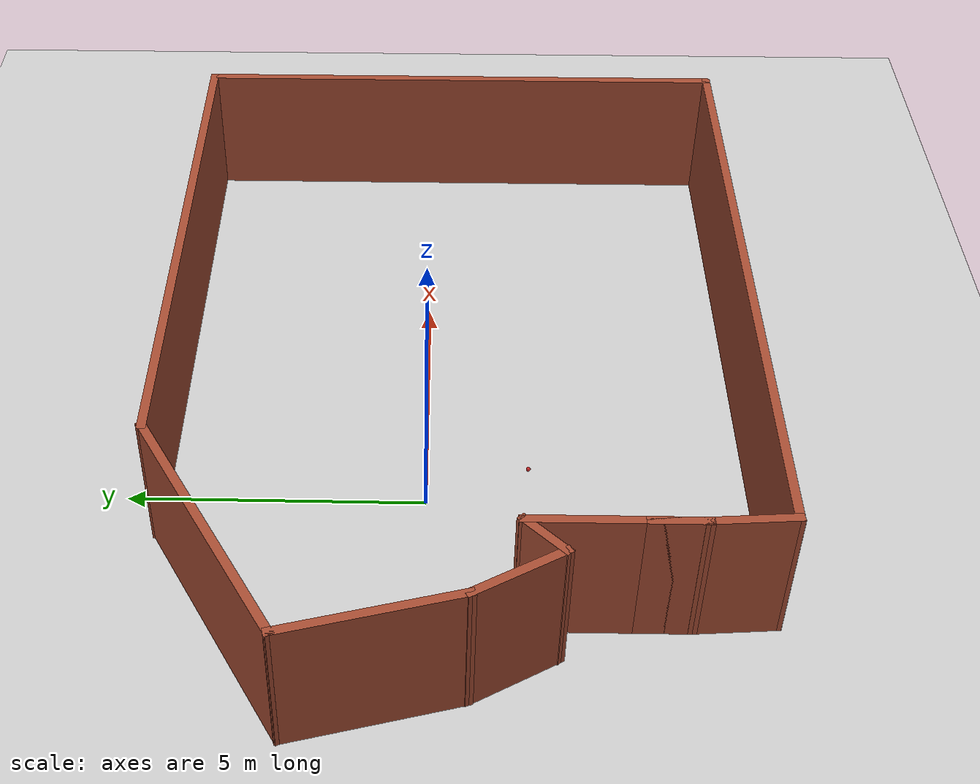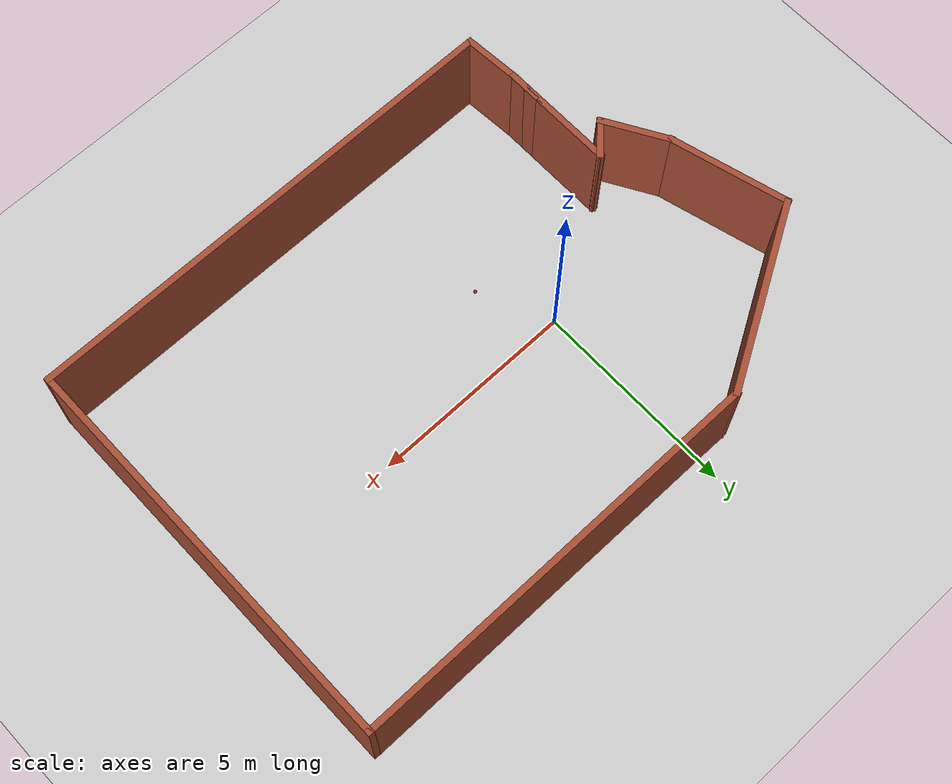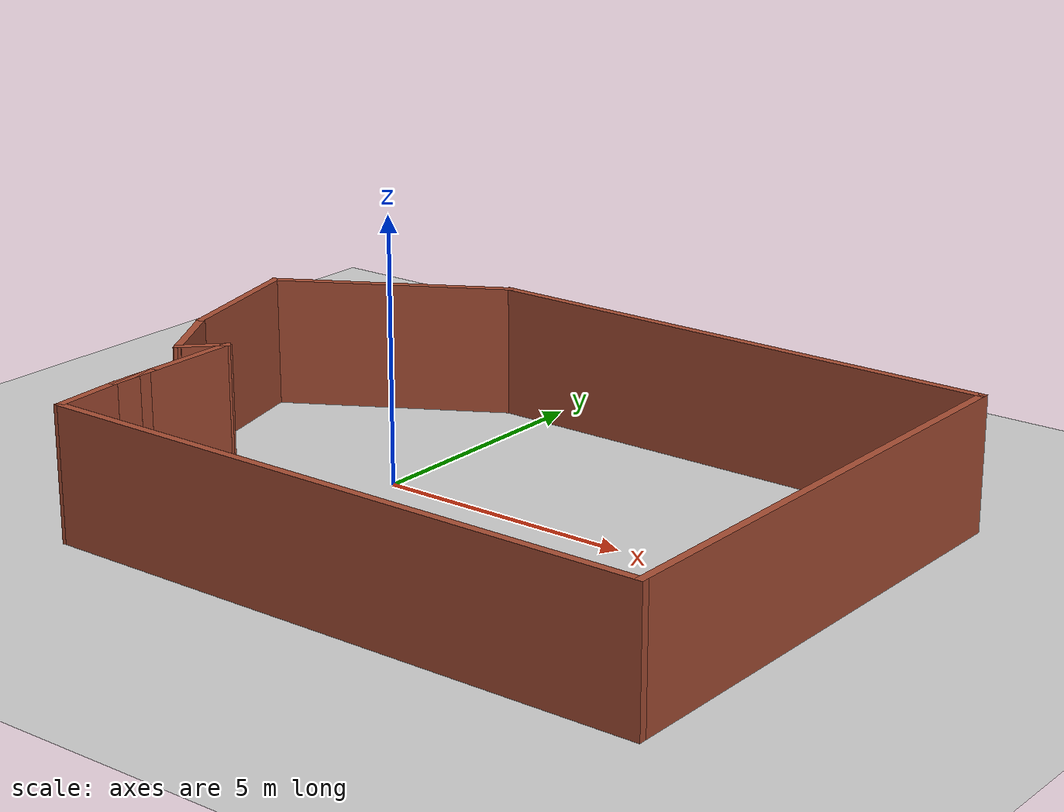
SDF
<sdf version="1.7">
 <world name="default">
  <light name="sun" type="directional">
   <pose>0 0 10 0 -0 0</pose>
   <diffuse>0.8 0.8 0.8 1</diffuse>
   <specular>0.2 0.2 0.2 1</specular>
   <attenuation>
    <range>1000</range>
    <constant>0.9</constant>
    <linear>0.01</linear>
    <quadratic>0.001</quadratic>
   </attenuation>
   <direction>-0.5 0.1 -0.9</direction>
   <spot><inner_angle>0</inner_angle><outer_angle>0</outer_angle><falloff>0</falloff></spot>
  </light>
  <model name="ground_plane">
   <static>1</static>
   <link name="link">
    <collision name="collision">
     <geometry><plane><normal>0 0 1</normal><size>100 100</size></plane></geometry>
     <surface>
      <contact><collide_bitmask>65535</collide_bitmask></contact>
      <friction><ode><mu>100</mu><mu2>50</mu2></ode></friction>
     </surface>
    </collision>
    <visual name="visual">
     <cast_shadows>0</cast_shadows>
     <geometry><plane><normal>0 0 1</normal><size>100 100</size></plane></geometry>
     <material>
      <script><uri>file://media/materials/scripts/gazebo.material</uri><name>Gazebo/Grey</name></script>
     </material>
    </visual>
   </link>
  </model>
  <gravity>0 0 -9.8</gravity>
  <magnetic_field>6e-06 2.3e-05 -4.2e-05</magnetic_field>
  <atmosphere type="adiabatic"/>
  <physics type="ode">
   <max_step_size>0.001</max_step_size>
   <real_time_factor>1</real_time_factor>
   <real_time_update_rate>1000</real_time_update_rate>
  </physics>
  <scene><ambient>0.4 0.4 0.4 1</ambient><background>0.7 0.7 0.7 1</background><shadows>1</shadows></scene>
  <audio><device>default</device></audio>
  <spherical_coordinates>
   <surface_model>EARTH_WGS84</surface_model>
   <latitude_deg>0</latitude_deg>
   <longitude_deg>0</longitude_deg>
   <elevation>0</elevation>
   <heading_deg>0</heading_deg>
  </spherical_coordinates>
  <model name="cricket_ball">
   <link name="link">
    <pose>0 0 0.0375 0 -0 0</pose>
    <inertial>
     <mass>0.1467</mass>
     <inertia>
      <ixx>8.25187e-05</ixx>
      <ixy>0</ixy>
      <ixz>0</ixz>
      <iyy>8.25187e-05</iyy>
      <iyz>0</iyz>
      <izz>8.25187e-05</izz>
     </inertia>
    </inertial>
    <collision name="collision">
     <geometry><sphere><radius>0.0375</radius></sphere></geometry>
     <surface>
      <contact>
       <poissons_ratio>0.347</poissons_ratio>
       <elastic_modulus>8.8e+09</elastic_modulus>
       <ode><kp>100000</kp><kd>100</kd><max_vel>100</max_vel><min_depth>0.001</min_depth></ode>
      </contact>
      <friction>
       <torsional>
        <coefficient>1</coefficient>
        <use_patch_radius>0</use_patch_radius>
        <surface_radius>0.01</surface_radius>
       </torsional>
      </friction>
     </surface>
    </collision>
    <visual name="visual">
     <geometry><sphere><radius>0.0375</radius></sphere></geometry>
     <material>
      <script><uri>file://media/materials/scripts/gazebo.material</uri><name>Gazebo/Red</name></script>
     </material>
    </visual>
    <velocity_decay><linear>0</linear><angular>0.005</angular></velocity_decay>
   </link>
   <pose>0.786291 -1.74003 -0.001014 0 -0 0</pose>
  </model>
  <model name="my_world">
   <pose>2.25946 -0.526396 0 0 -0 0</pose>
   <link name="Wall_0">
    <collision name="Wall_0_Collision">
     <geometry><box><size>1 0.15 2.5</size></box></geometry>
     <pose>0 0 1.25 0 -0 0</pose>
    </collision>
    <visual name="Wall_0_Visual">
     <pose>0 0 1.25 0 -0 0</pose>
     <geometry><box><size>1 0.15 2.5</size></box></geometry>
     <material>
      <script><uri>file://media/materials/scripts/gazebo.material</uri><name>Gazebo/Bricks</name></script>
      <ambient>1 1 1 1</ambient>
     </material>
     <meta><layer>0</layer></meta>
    </visual>
    <pose>-4.88946 -3.1986 0 0 -0 -1.5708</pose>
   </link>
   <link name="Wall_1">
    <collision name="Wall_1_Collision">
     <geometry><box><size>1 0.15 2.5</size></box></geometry>
     <pose>0 0 1.25 0 -0 0</pose>
    </collision>
    <visual name="Wall_1_Visual">
     <pose>0 0 1.25 0 -0 0</pose>
     <geometry><box><size>1 0.15 2.5</size></box></geometry>
     <material>
      <script><uri>file://media/materials/scripts/gazebo.material</uri><name>Gazebo/Bricks</name></script>
      <ambient>1 1 1 1</ambient>
     </material>
     <meta><layer>0</layer></meta>
    </visual>
    <pose>-4.88946 -3.1986 0 0 -0 1.5708</pose>
   </link>
   <link name="Wall_10">
    <collision name="Wall_10_Collision">
     <geometry><box><size>1.46595 0.15 2.5</size></box></geometry>
     <pose>0 0 1.25 0 -0 0</pose>
    </collision>
    <visual name="Wall_10_Visual">
     <pose>0 0 1.25 0 -0 0</pose>
     <geometry><box><size>1.46595 0.15 2.5</size></box></geometry>
     <material>
      <script><uri>file://media/materials/scripts/gazebo.material</uri><name>Gazebo/Bricks</name></script>
      <ambient>1 1 1 1</ambient>
     </material>
     <meta><layer>0</layer></meta>
    </visual>
    <pose>-4.84194 -4.27986 0 0 -0 1.64308</pose>
   </link>
   <link name="Wall_2">
    <collision name="Wall_2_Collision">
     <geometry><box><size>2 0.15 2.5</size></box></geometry>
     <pose>0 0 1.25 0 -0 0</pose>
    </collision>
    <visual name="Wall_2_Visual">
     <pose>0 0 1.25 0 -0 0</pose>
     <geometry><box><size>2 0.15 2.5</size></box></geometry>
     <material>
      <script><uri>file://media/materials/scripts/gazebo.material</uri><name>Gazebo/Bricks</name></script>
      <ambient>1 1 1 1</ambient>
     </material>
     <meta><layer>0</layer></meta>
    </visual>
    <pose>-4.88946 -1.8486 0 0 -0 1.5708</pose>
   </link>
   <link name="Wall_3">
    <collision name="Wall_3_Collision">
     <geometry><box><size>1 0.15 2.5</size></box></geometry>
     <pose>0 0 1.25 0 -0 0</pose>
    </collision>
    <visual name="Wall_3_Visual">
     <pose>0 0 1.25 0 -0 0</pose>
     <geometry><box><size>1 0.15 2.5</size></box></geometry>
     <material>
      <script><uri>file://media/materials/scripts/gazebo.material</uri><name>Gazebo/Bricks</name></script>
      <ambient>1 1 1 1</ambient>
     </material>
     <meta><layer>0</layer></meta>
    </visual>
    <pose>-5.18998 -1.22412 0 0 -0 -2.35619</pose>
   </link>
   <link name="Wall_4">
    <collision name="Wall_4_Collision">
     <geometry><box><size>1.75 0.15 2.5</size></box></geometry>
     <pose>0 0 1.25 0 -0 0</pose>
    </collision>
    <visual name="Wall_4_Visual">
     <pose>0 0 1.25 0 -0 0</pose>
     <geometry><box><size>1.75 0.15 2.5</size></box></geometry>
     <material>
      <script><uri>file://media/materials/scripts/gazebo.material</uri><name>Gazebo/Bricks</name></script>
      <ambient>1 1 1 1</ambient>
     </material>
     <meta><layer>0</layer></meta>
    </visual>
    <pose>-5.8905 -0.831825 0 0 -0 2.0944</pose>
   </link>
   <link name="Wall_5">
    <collision name="Wall_5_Collision">
     <geometry><box><size>3 0.15 2.5</size></box></geometry>
     <pose>0 0 1.25 0 -0 0</pose>
    </collision>
    <visual name="Wall_5_Visual">
     <pose>0 0 1.25 0 -0 0</pose>
     <geometry><box><size>3 0.15 2.5</size></box></geometry>
     <material>
      <script><uri>file://media/materials/scripts/gazebo.material</uri><name>Gazebo/Bricks</name></script>
      <ambient>1 1 1 1</ambient>
     </material>
     <meta><layer>0</layer></meta>
    </visual>
    <pose>-6.65932 1.23744 0 0 -0 1.8326</pose>
   </link>
   <link name="Wall_6">
    <collision name="Wall_6_Collision">
     <geometry><box><size>4.75 0.15 2.5</size></box></geometry>
     <pose>0 0 1.25 0 -0 0</pose>
    </collision>
    <visual name="Wall_6_Visual">
     <pose>0 0 1.25 0 -0 0</pose>
     <geometry><box><size>4.75 0.15 2.5</size></box></geometry>
     <material>
      <script><uri>file://media/materials/scripts/gazebo.material</uri><name>Gazebo/Bricks</name></script>
      <ambient>1 1 1 1</ambient>
     </material>
     <meta><layer>0</layer></meta>
    </visual>
    <pose>-5.03627 3.76388 0 0 -0 0.523599</pose>
   </link>
   <link name="Wall_7">
    <collision name="Wall_7_Collision">
     <geometry><box><size>10.25 0.15 2.5</size></box></geometry>
     <pose>0 0 1.25 0 -0 0</pose>
    </collision>
    <visual name="Wall_7_Visual">
     <pose>0 0 1.25 0 -0 0</pose>
     <geometry><box><size>10.25 0.15 2.5</size></box></geometry>
     <material>
      <script><uri>file://media/materials/scripts/gazebo.material</uri><name>Gazebo/Bricks</name></script>
      <ambient>1 1 1 1</ambient>
     </material>
     <meta><layer>0</layer></meta>
    </visual>
    <pose>2.00558 4.91388 0 0 -0 0</pose>
   </link>
   <link name="Wall_8">
    <collision name="Wall_8_Collision">
     <geometry><box><size>10 0.15 2.5</size></box></geometry>
     <pose>0 0 1.25 0 -0 0</pose>
    </collision>
    <visual name="Wall_8_Visual">
     <pose>0 0 1.25 0 -0 0</pose>
     <geometry><box><size>10 0.15 2.5</size></box></geometry>
     <material>
      <script><uri>file://media/materials/scripts/gazebo.material</uri><name>Gazebo/Bricks</name></script>
      <ambient>1 1 1 1</ambient>
     </material>
     <meta><layer>0</layer></meta>
    </visual>
    <pose>7.05558 -0.011116 0 0 -0 -1.5708</pose>
   </link>
   <link name="Wall_9">
    <collision name="Wall_9_Collision">
     <geometry><box><size>12 0.15 2.5</size></box></geometry>
     <pose>0 0 1.25 0 -0 0</pose>
    </collision>
    <visual name="Wall_9_Visual">
     <pose>0 0 1.25 0 -0 0</pose>
     <geometry><box><size>12 0.15 2.5</size></box></geometry>
     <material>
      <script><uri>file://media/materials/scripts/gazebo.material</uri><name>Gazebo/Bricks</name></script>
      <ambient>1 1 1 1</ambient>
     </material>
     <meta><layer>0</layer></meta>
    </visual>
    <pose>1.13058 -4.93612 0 0 -0 3.14159</pose>
   </link>
   <static>1</static>
  </model>
 </world>
</sdf>
